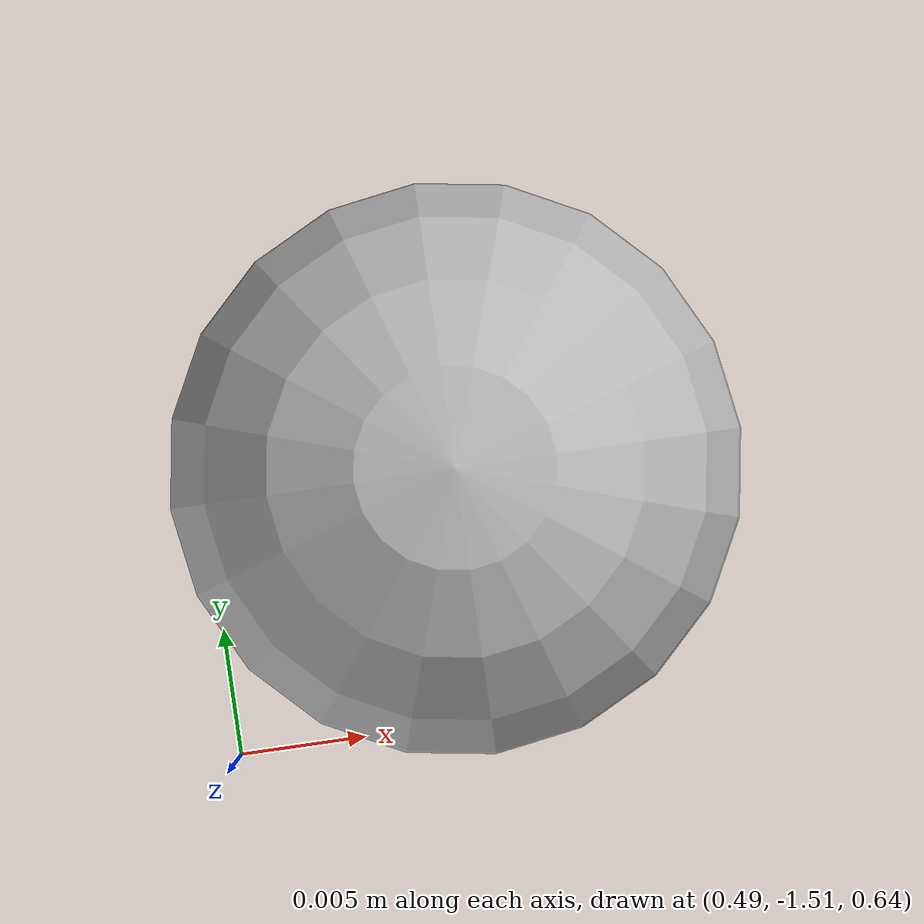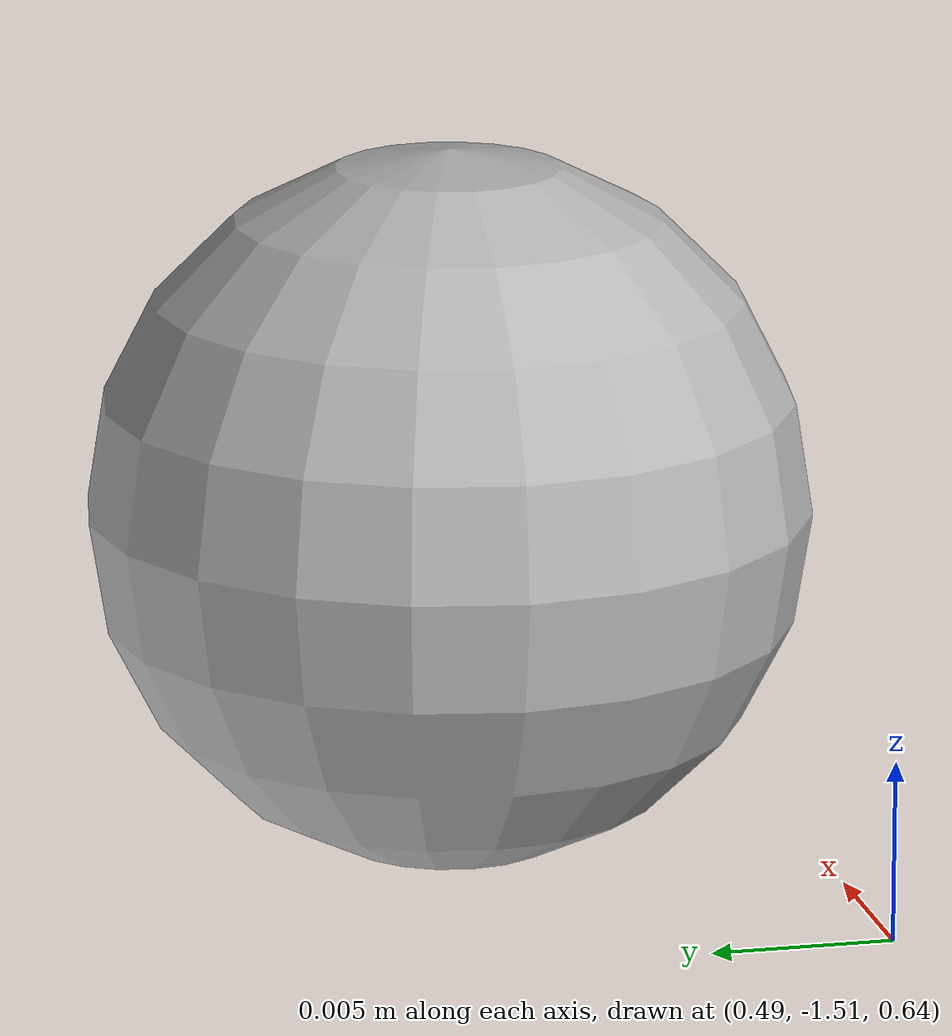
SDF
<?xml version="1.0" encoding="UTF-8"?>

<sdf version="1.5">
	<world name="default">
		<!-- A global light source -->
		<include>
			<uri>model://sun</uri>
		</include>
		<!-- A ground plane -->
		<include>
			<uri>model://ground_plane</uri>
		</include>

		<!-- green spot light -->

    <!-- sphere with point light as child of link -->
    <model name="inventacao_car_camera_light">
      <pose>0.5 -1.5 0.65 0 0 0</pose>
      <link name="lightLink">
        <!-- yellow point light -->
        <light type="spot" name="bottomSpotLight">
		  <pose>0 0 0.923891 0 0 0</pose>
		  <diffuse>.6 .6 .6 1</diffuse>
		  <specular>.15 .15 .15 1</specular>
		  <attenuation>
		    <range>10</range>
		    <linear>0.01</linear>
		    <constant>0.2</constant>
		    <quadratic>0.0</quadratic>
		  </attenuation>
		  <direction>0 0 -1</direction>
		  <spot>
		    <inner_angle>0.1</inner_angle>
		    <outer_angle>1.3</outer_angle>
		    <falloff>1.2</falloff>
		  </spot>
		  <cast_shadows>false</cast_shadows>
		</light>

        <collision name="collision">
          <geometry>
            <sphere>
              <radius>0.01</radius>
            </sphere>
          </geometry>
        </collision>
        <visual name="visual">
          <geometry>
            <sphere>
              <radius>0.01</radius>
            </sphere>
          </geometry>
        </visual>
      </link>

      <!-- Set model as kinematic -->

    </model>

	</world>
</sdf>
